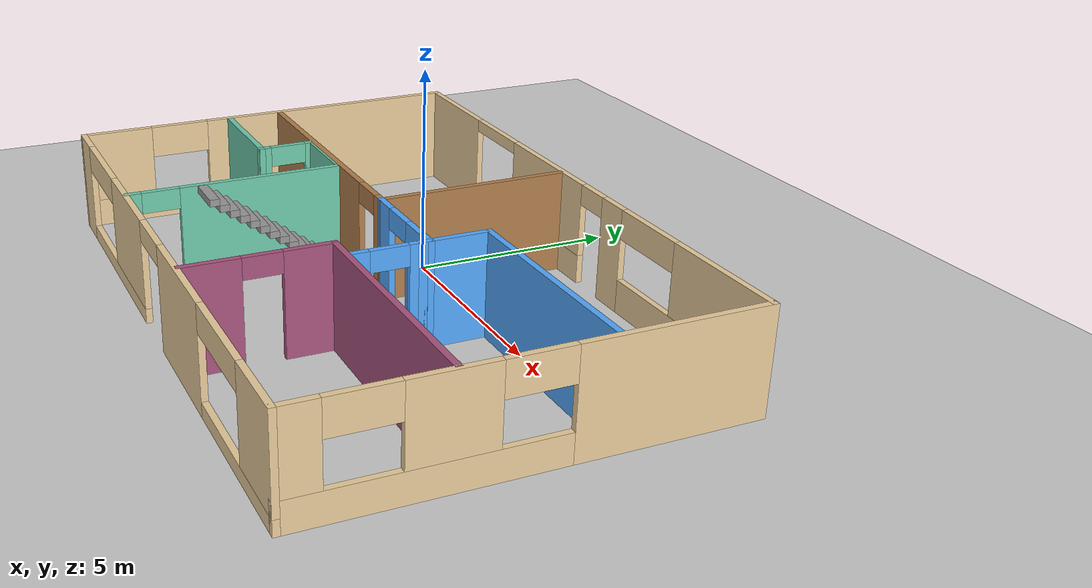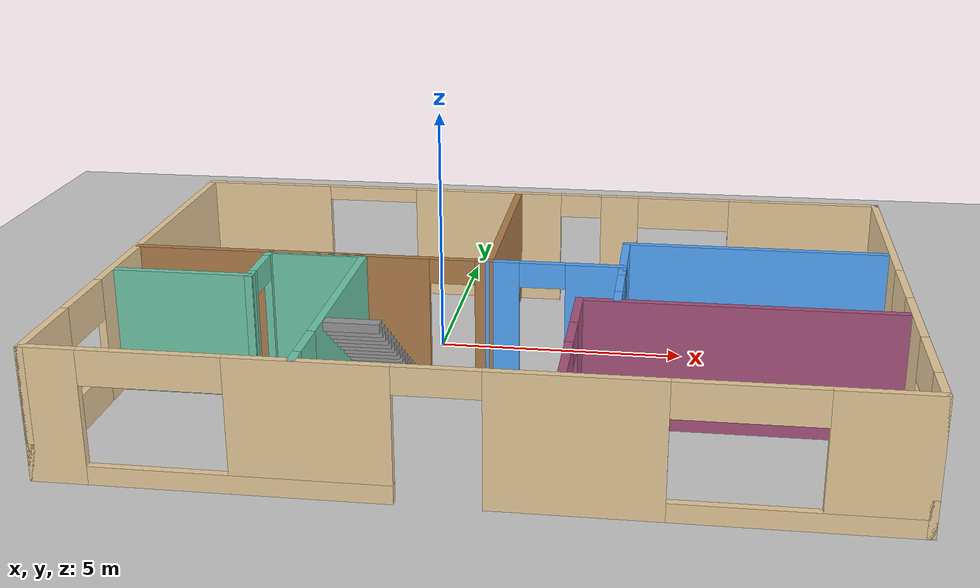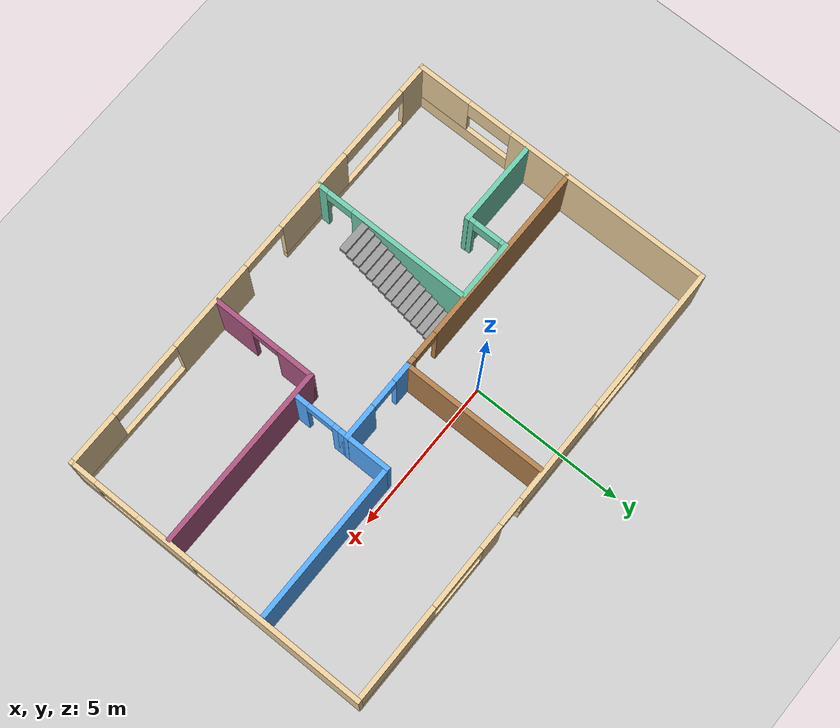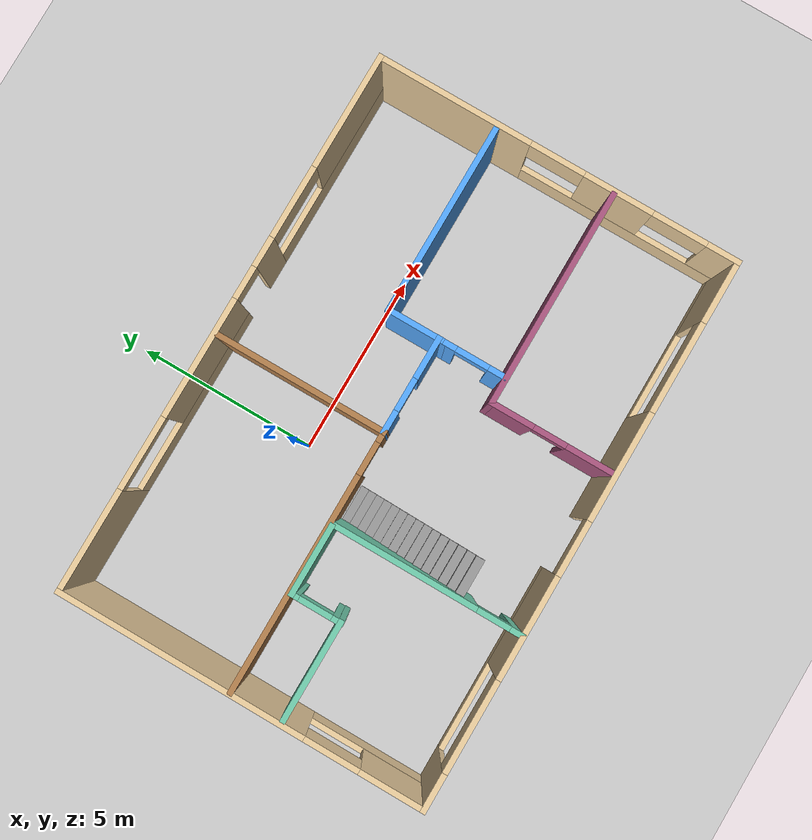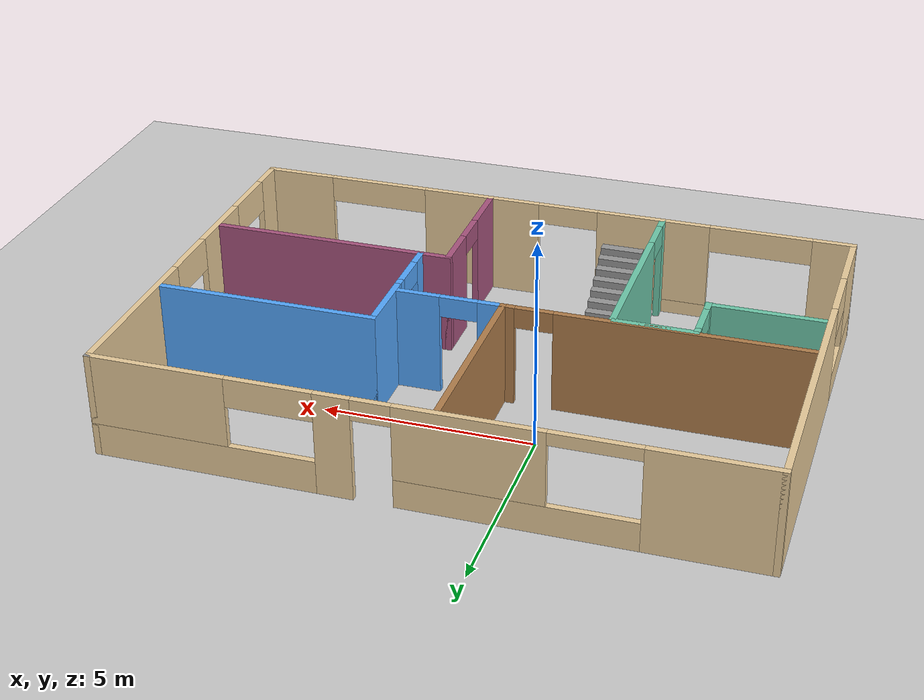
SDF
<sdf version="1.6">
 <world name="default">
  <model name="ground_plane">
   <static>1</static>
   <link name="link">
    <collision name="collision">
     <geometry><plane><normal>0 0 1</normal><size>100 100</size></plane></geometry>
     <surface>
      <contact><collide_bitmask>65535</collide_bitmask></contact>
      <friction><ode><mu>100</mu><mu2>50</mu2></ode></friction>
     </surface>
    </collision>
    <visual name="visual">
     <cast_shadows>0</cast_shadows>
     <geometry><plane><normal>0 0 1</normal><size>100 100</size></plane></geometry>
     <material>
      <script><uri>file://media/materials/scripts/gazebo.material</uri><name>Gazebo/Grey</name></script>
     </material>
    </visual>
   </link>
  </model>
  <model name="MyBuilding">
   <pose>1.58731 -1.90203 0 0 -0 0</pose>
   <link name="Stairs_0">
    <visual name="Stairs_0_Visual_0">
     <pose>-2.26321 0.057041 0.083333 0 -0 0</pose>
     <geometry><box><size>1 0.233333 0.166667</size></box></geometry>
     <material>
      <script><uri>file://media/materials/scripts/gazebo.material</uri><name>Gazebo/Grey</name></script>
      <ambient>1 1 1 1</ambient>
     </material>
     <meta><layer>0</layer></meta>
    </visual>
    <collision name="Stairs_0_Collision_0">
     <geometry><box><size>1 0.233333 0.166667</size></box></geometry>
     <pose>-2.26321 0.057041 0.083333 0 -0 0</pose>
    </collision>
    <visual name="Stairs_0_Visual_1">
     <pose>-2.26321 -0.176293 0.25 0 -0 0</pose>
     <geometry><box><size>1 0.233333 0.166667</size></box></geometry>
     <material>
      <script><uri>file://media/materials/scripts/gazebo.material</uri><name>Gazebo/Grey</name></script>
      <ambient>1 1 1 1</ambient>
     </material>
     <meta><layer>0</layer></meta>
    </visual>
    <collision name="Stairs_0_Collision_1">
     <geometry><box><size>1 0.233333 0.166667</size></box></geometry>
     <pose>-2.26321 -0.176293 0.25 0 -0 0</pose>
    </collision>
    <visual name="Stairs_0_Visual_2">
     <pose>-2.26321 -0.409626 0.416667 0 -0 0</pose>
     <geometry><box><size>1 0.233333 0.166667</size></box></geometry>
     <material>
      <script><uri>file://media/materials/scripts/gazebo.material</uri><name>Gazebo/Grey</name></script>
      <ambient>1 1 1 1</ambient>
     </material>
     <meta><layer>0</layer></meta>
    </visual>
    <collision name="Stairs_0_Collision_2">
     <geometry><box><size>1 0.233333 0.166667</size></box></geometry>
     <pose>-2.26321 -0.409626 0.416667 0 -0 0</pose>
    </collision>
    <visual name="Stairs_0_Visual_3">
     <pose>-2.26321 -0.642959 0.583333 0 -0 0</pose>
     <geometry><box><size>1 0.233333 0.166667</size></box></geometry>
     <material>
      <script><uri>file://media/materials/scripts/gazebo.material</uri><name>Gazebo/Grey</name></script>
      <ambient>1 1 1 1</ambient>
     </material>
     <meta><layer>0</layer></meta>
    </visual>
    <collision name="Stairs_0_Collision_3">
     <geometry><box><size>1 0.233333 0.166667</size></box></geometry>
     <pose>-2.26321 -0.642959 0.583333 0 -0 0</pose>
    </collision>
    <visual name="Stairs_0_Visual_4">
     <pose>-2.26321 -0.876293 0.75 0 -0 0</pose>
     <geometry><box><size>1 0.233333 0.166667</size></box></geometry>
     <material>
      <script><uri>file://media/materials/scripts/gazebo.material</uri><name>Gazebo/Grey</name></script>
      <ambient>1 1 1 1</ambient>
     </material>
     <meta><layer>0</layer></meta>
    </visual>
    <collision name="Stairs_0_Collision_4">
     <geometry><box><size>1 0.233333 0.166667</size></box></geometry>
     <pose>-2.26321 -0.876293 0.75 0 -0 0</pose>
    </collision>
    <visual name="Stairs_0_Visual_5">
     <pose>-2.26321 -1.10963 0.916667 0 -0 0</pose>
     <geometry><box><size>1 0.233333 0.166667</size></box></geometry>
     <material>
      <script><uri>file://media/materials/scripts/gazebo.material</uri><name>Gazebo/Grey</name></script>
      <ambient>1 1 1 1</ambient>
     </material>
     <meta><layer>0</layer></meta>
    </visual>
    <collision name="Stairs_0_Collision_5">
     <geometry><box><size>1 0.233333 0.166667</size></box></geometry>
     <pose>-2.26321 -1.10963 0.916667 0 -0 0</pose>
    </collision>
    <visual name="Stairs_0_Visual_6">
     <pose>-2.26321 -1.34296 1.08333 0 -0 0</pose>
     <geometry><box><size>1 0.233333 0.166667</size></box></geometry>
     <material>
      <script><uri>file://media/materials/scripts/gazebo.material</uri><name>Gazebo/Grey</name></script>
      <ambient>1 1 1 1</ambient>
     </material>
     <meta><layer>0</layer></meta>
    </visual>
    <collision name="Stairs_0_Collision_6">
     <geometry><box><size>1 0.233333 0.166667</size></box></geometry>
     <pose>-2.26321 -1.34296 1.08333 0 -0 0</pose>
    </collision>
    <visual name="Stairs_0_Visual_7">
     <pose>-2.26321 -1.57629 1.25 0 -0 0</pose>
     <geometry><box><size>1 0.233333 0.166667</size></box></geometry>
     <material>
      <script><uri>file://media/materials/scripts/gazebo.material</uri><name>Gazebo/Grey</name></script>
      <ambient>1 1 1 1</ambient>
     </material>
     <meta><layer>0</layer></meta>
    </visual>
    <collision name="Stairs_0_Collision_7">
     <geometry><box><size>1 0.233333 0.166667</size></box></geometry>
     <pose>-2.26321 -1.57629 1.25 0 -0 0</pose>
    </collision>
    <visual name="Stairs_0_Visual_8">
     <pose>-2.26321 -1.80963 1.41667 0 -0 0</pose>
     <geometry><box><size>1 0.233333 0.166667</size></box></geometry>
     <material>
      <script><uri>file://media/materials/scripts/gazebo.material</uri><name>Gazebo/Grey</name></script>
      <ambient>1 1 1 1</ambient>
     </material>
     <meta><layer>0</layer></meta>
    </visual>
    <collision name="Stairs_0_Collision_8">
     <geometry><box><size>1 0.233333 0.166667</size></box></geometry>
     <pose>-2.26321 -1.80963 1.41667 0 -0 0</pose>
    </collision>
    <visual name="Stairs_0_Visual_9">
     <pose>-2.26321 -2.04296 1.58333 0 -0 0</pose>
     <geometry><box><size>1 0.233333 0.166667</size></box></geometry>
     <material>
      <script><uri>file://media/materials/scripts/gazebo.material</uri><name>Gazebo/Grey</name></script>
      <ambient>1 1 1 1</ambient>
     </material>
     <meta><layer>0</layer></meta>
    </visual>
    <collision name="Stairs_0_Collision_9">
     <geometry><box><size>1 0.233333 0.166667</size></box></geometry>
     <pose>-2.26321 -2.04296 1.58333 0 -0 0</pose>
    </collision>
    <visual name="Stairs_0_Visual_10">
     <pose>-2.26321 -2.27629 1.75 0 -0 0</pose>
     <geometry><box><size>1 0.233333 0.166667</size></box></geometry>
     <material>
      <script><uri>file://media/materials/scripts/gazebo.material</uri><name>Gazebo/Grey</name></script>
      <ambient>1 1 1 1</ambient>
     </material>
     <meta><layer>0</layer></meta>
    </visual>
    <collision name="Stairs_0_Collision_10">
     <geometry><box><size>1 0.233333 0.166667</size></box></geometry>
     <pose>-2.26321 -2.27629 1.75 0 -0 0</pose>
    </collision>
    <visual name="Stairs_0_Visual_11">
     <pose>-2.26321 -2.50963 1.91667 0 -0 0</pose>
     <geometry><box><size>1 0.233333 0.166667</size></box></geometry>
     <material>
      <script><uri>file://media/materials/scripts/gazebo.material</uri><name>Gazebo/Grey</name></script>
      <ambient>1 1 1 1</ambient>
     </material>
     <meta><layer>0</layer></meta>
    </visual>
    <collision name="Stairs_0_Collision_11">
     <geometry><box><size>1 0.233333 0.166667</size></box></geometry>
     <pose>-2.26321 -2.50963 1.91667 0 -0 0</pose>
    </collision>
    <visual name="Stairs_0_Visual_12">
     <pose>-2.26321 -2.74296 2.08333 0 -0 0</pose>
     <geometry><box><size>1 0.233333 0.166667</size></box></geometry>
     <material>
      <script><uri>file://media/materials/scripts/gazebo.material</uri><name>Gazebo/Grey</name></script>
      <ambient>1 1 1 1</ambient>
     </material>
     <meta><layer>0</layer></meta>
    </visual>
    <collision name="Stairs_0_Collision_12">
     <geometry><box><size>1 0.233333 0.166667</size></box></geometry>
     <pose>-2.26321 -2.74296 2.08333 0 -0 0</pose>
    </collision>
    <visual name="Stairs_0_Visual_13">
     <pose>-2.26321 -2.97629 2.25 0 -0 0</pose>
     <geometry><box><size>1 0.233333 0.166667</size></box></geometry>
     <material>
      <script><uri>file://media/materials/scripts/gazebo.material</uri><name>Gazebo/Grey</name></script>
      <ambient>1 1 1 1</ambient>
     </material>
     <meta><layer>0</layer></meta>
    </visual>
    <collision name="Stairs_0_Collision_13">
     <geometry><box><size>1 0.233333 0.166667</size></box></geometry>
     <pose>-2.26321 -2.97629 2.25 0 -0 0</pose>
    </collision>
    <visual name="Stairs_0_Visual_14">
     <pose>-2.26321 -3.20963 2.41667 0 -0 0</pose>
     <geometry><box><size>1 0.233333 0.166667</size></box></geometry>
     <material>
      <script><uri>file://media/materials/scripts/gazebo.material</uri><name>Gazebo/Grey</name></script>
      <ambient>1 1 1 1</ambient>
     </material>
     <meta><layer>0</layer></meta>
    </visual>
    <collision name="Stairs_0_Collision_14">
     <geometry><box><size>1 0.233333 0.166667</size></box></geometry>
     <pose>-2.26321 -3.20963 2.41667 0 -0 0</pose>
    </collision>
   </link>
   <link name="Wall_24">
    <pose>-7.5 0 0 0 0 -1.5708</pose>
    <visual name="Wall_24_Visual_0">
     <pose>-1.66537 0 1.25 0 -0 0</pose>
     <geometry><box><size>6.81926 0.15 2.5</size></box></geometry>
     <material>
      <script><uri>file://media/materials/scripts/gazebo.material</uri><name>Gazebo/Grey</name></script>
      <ambient>0.921569 0.807843 0.615686 1</ambient>
     </material>
     <meta><layer>0</layer></meta>
    </visual>
    <collision name="Wall_24_Collision_0">
     <geometry><box><size>6.81926 0.15 2.5</size></box></geometry>
     <pose>-1.66537 0 1.25 0 -0 0</pose>
    </collision>
    <visual name="Wall_24_Visual_1">
     <pose>3.40963 0 0.35 0 -0 0</pose>
     <geometry><box><size>3.33074 0.15 0.7</size></box></geometry>
     <material>
      <script><uri>file://media/materials/scripts/gazebo.material</uri><name>Gazebo/Grey</name></script>
      <ambient>0.921569 0.807843 0.615686 1</ambient>
     </material>
     <meta><layer>0</layer></meta>
    </visual>
    <collision name="Wall_24_Collision_1">
     <geometry><box><size>3.33074 0.15 0.7</size></box></geometry>
     <pose>3.40963 0 0.35 0 -0 0</pose>
    </collision>
    <visual name="Wall_24_Visual_2">
     <pose>4.15963 0 1.6 0 -0 0</pose>
     <geometry><box><size>1.83074 0.15 1.8</size></box></geometry>
     <material>
      <script><uri>file://media/materials/scripts/gazebo.material</uri><name>Gazebo/Grey</name></script>
      <ambient>0.921569 0.807843 0.615686 1</ambient>
     </material>
     <meta><layer>0</layer></meta>
    </visual>
    <collision name="Wall_24_Collision_2">
     <geometry><box><size>1.83074 0.15 1.8</size></box></geometry>
     <pose>4.15963 0 1.6 0 -0 0</pose>
    </collision>
    <visual name="Wall_24_Visual_3">
     <pose>2.49426 0 2.1 0 -0 0</pose>
     <geometry><box><size>1.5 0.15 0.8</size></box></geometry>
     <material>
      <script><uri>file://media/materials/scripts/gazebo.material</uri><name>Gazebo/Grey</name></script>
      <ambient>0.921569 0.807843 0.615686 1</ambient>
     </material>
     <meta><layer>0</layer></meta>
    </visual>
    <collision name="Wall_24_Collision_3">
     <geometry><box><size>1.5 0.15 0.8</size></box></geometry>
     <pose>2.49426 0 2.1 0 -0 0</pose>
    </collision>
   </link>
   <link name="Wall_25">
    <pose>0 -5 0 0 -0 0</pose>
    <visual name="Wall_25_Visual_0">
     <pose>-7.05279 0 1.25 0 -0 0</pose>
     <geometry><box><size>1.04517 0.15 2.5</size></box></geometry>
     <material>
      <script><uri>file://media/materials/scripts/gazebo.material</uri><name>Gazebo/Grey</name></script>
      <ambient>0.921569 0.807843 0.615686 1</ambient>
     </material>
     <meta><layer>0</layer></meta>
    </visual>
    <collision name="Wall_25_Collision_0">
     <geometry><box><size>1.04517 0.15 2.5</size></box></geometry>
     <pose>-7.05279 0 1.25 0 -0 0</pose>
    </collision>
    <visual name="Wall_25_Visual_1">
     <pose>1.78979 0 1.25 0 -0 0</pose>
     <geometry><box><size>3 0.15 2.5</size></box></geometry>
     <material>
      <script><uri>file://media/materials/scripts/gazebo.material</uri><name>Gazebo/Grey</name></script>
      <ambient>0.921569 0.807843 0.615686 1</ambient>
     </material>
     <meta><layer>0</layer></meta>
    </visual>
    <collision name="Wall_25_Collision_1">
     <geometry><box><size>3 0.15 2.5</size></box></geometry>
     <pose>1.78979 0 1.25 0 -0 0</pose>
    </collision>
    <visual name="Wall_25_Visual_2">
     <pose>-3.87021 0 0.175 0 -0 0</pose>
     <geometry><box><size>5.32 0.15 0.35</size></box></geometry>
     <material>
      <script><uri>file://media/materials/scripts/gazebo.material</uri><name>Gazebo/Grey</name></script>
      <ambient>0.921569 0.807843 0.615686 1</ambient>
     </material>
     <meta><layer>0</layer></meta>
    </visual>
    <collision name="Wall_25_Collision_2">
     <geometry><box><size>5.32 0.15 0.35</size></box></geometry>
     <pose>-3.87021 0 0.175 0 -0 0</pose>
    </collision>
    <visual name="Wall_25_Visual_3">
     <pose>5.43258 0 0.175 0 -0 0</pose>
     <geometry><box><size>4.28558 0.15 0.35</size></box></geometry>
     <material>
      <script><uri>file://media/materials/scripts/gazebo.material</uri><name>Gazebo/Grey</name></script>
      <ambient>0.921569 0.807843 0.615686 1</ambient>
     </material>
     <meta><layer>0</layer></meta>
    </visual>
    <collision name="Wall_25_Collision_3">
     <geometry><box><size>4.28558 0.15 0.35</size></box></geometry>
     <pose>5.43258 0 0.175 0 -0 0</pose>
    </collision>
    <visual name="Wall_25_Visual_4">
     <pose>-2.62021 0 1.425 0 -0 0</pose>
     <geometry><box><size>2.82 0.15 2.15</size></box></geometry>
     <material>
      <script><uri>file://media/materials/scripts/gazebo.material</uri><name>Gazebo/Grey</name></script>
      <ambient>0.921569 0.807843 0.615686 1</ambient>
     </material>
     <meta><layer>0</layer></meta>
    </visual>
    <collision name="Wall_25_Collision_4">
     <geometry><box><size>2.82 0.15 2.15</size></box></geometry>
     <pose>-2.62021 0 1.425 0 -0 0</pose>
    </collision>
    <visual name="Wall_25_Visual_5">
     <pose>-2.62021 0 1.425 0 -0 0</pose>
     <geometry><box><size>2.82 0.15 2.15</size></box></geometry>
     <material>
      <script><uri>file://media/materials/scripts/gazebo.material</uri><name>Gazebo/Grey</name></script>
      <ambient>0.921569 0.807843 0.615686 1</ambient>
     </material>
     <meta><layer>0</layer></meta>
    </visual>
    <collision name="Wall_25_Collision_5">
     <geometry><box><size>2.82 0.15 2.15</size></box></geometry>
     <pose>-2.62021 0 1.425 0 -0 0</pose>
    </collision>
    <visual name="Wall_25_Visual_6">
     <pose>6.68258 0 1.425 0 -0 0</pose>
     <geometry><box><size>1.78558 0.15 2.15</size></box></geometry>
     <material>
      <script><uri>file://media/materials/scripts/gazebo.material</uri><name>Gazebo/Grey</name></script>
      <ambient>0.921569 0.807843 0.615686 1</ambient>
     </material>
     <meta><layer>0</layer></meta>
    </visual>
    <collision name="Wall_25_Collision_6">
     <geometry><box><size>1.78558 0.15 2.15</size></box></geometry>
     <pose>6.68258 0 1.425 0 -0 0</pose>
    </collision>
    <visual name="Wall_25_Visual_7">
     <pose>-5.28021 0 2.175 0 -0 0</pose>
     <geometry><box><size>2.5 0.15 0.65</size></box></geometry>
     <material>
      <script><uri>file://media/materials/scripts/gazebo.material</uri><name>Gazebo/Grey</name></script>
      <ambient>0.921569 0.807843 0.615686 1</ambient>
     </material>
     <meta><layer>0</layer></meta>
    </visual>
    <collision name="Wall_25_Collision_7">
     <geometry><box><size>2.5 0.15 0.65</size></box></geometry>
     <pose>-5.28021 0 2.175 0 -0 0</pose>
    </collision>
    <visual name="Wall_25_Visual_8">
     <pose>4.53979 0 2.175 0 -0 0</pose>
     <geometry><box><size>2.5 0.15 0.65</size></box></geometry>
     <material>
      <script><uri>file://media/materials/scripts/gazebo.material</uri><name>Gazebo/Grey</name></script>
      <ambient>0.921569 0.807843 0.615686 1</ambient>
     </material>
     <meta><layer>0</layer></meta>
    </visual>
    <collision name="Wall_25_Collision_8">
     <geometry><box><size>2.5 0.15 0.65</size></box></geometry>
     <pose>4.53979 0 2.175 0 -0 0</pose>
    </collision>
    <visual name="Wall_25_Visual_9">
     <pose>-0.460207 0 2.25 0 -0 0</pose>
     <geometry><box><size>1.5 0.15 0.5</size></box></geometry>
     <material>
      <script><uri>file://media/materials/scripts/gazebo.material</uri><name>Gazebo/Grey</name></script>
      <ambient>0.921569 0.807843 0.615686 1</ambient>
     </material>
     <meta><layer>0</layer></meta>
    </visual>
    <collision name="Wall_25_Collision_9">
     <geometry><box><size>1.5 0.15 0.5</size></box></geometry>
     <pose>-0.460207 0 2.25 0 -0 0</pose>
    </collision>
    <visual name="Wall_25_Visual_10">
     <pose>-0.460207 0 2.25 0 -0 0</pose>
     <geometry><box><size>1.5 0.15 0.5</size></box></geometry>
     <material>
      <script><uri>file://media/materials/scripts/gazebo.material</uri><name>Gazebo/Grey</name></script>
      <ambient>0.921569 0.807843 0.615686 1</ambient>
     </material>
     <meta><layer>0</layer></meta>
    </visual>
    <collision name="Wall_25_Collision_10">
     <geometry><box><size>1.5 0.15 0.5</size></box></geometry>
     <pose>-0.460207 0 2.25 0 -0 0</pose>
    </collision>
   </link>
   <link name="Wall_28">
    <pose>-2.855 -2.417 0 0 -0 1.5708</pose>
    <visual name="Wall_28_Visual_0">
     <pose>-2.42597 0 1.25 0 -0 0</pose>
     <geometry><box><size>0.39806 0.15 2.5</size></box></geometry>
     <material>
      <script><uri>file://media/materials/scripts/gazebo.material</uri><name>Gazebo/Grey</name></script>
      <ambient>0.435294 0.796078 0.67451 1</ambient>
     </material>
     <meta><layer>0</layer></meta>
    </visual>
    <collision name="Wall_28_Collision_0">
     <geometry><box><size>0.39806 0.15 2.5</size></box></geometry>
     <pose>-2.42597 0 1.25 0 -0 0</pose>
    </collision>
    <visual name="Wall_28_Visual_1">
     <pose>0.64903 0 1.25 0 -0 0</pose>
     <geometry><box><size>3.95194 0.15 2.5</size></box></geometry>
     <material>
      <script><uri>file://media/materials/scripts/gazebo.material</uri><name>Gazebo/Grey</name></script>
      <ambient>0.435294 0.796078 0.67451 1</ambient>
     </material>
     <meta><layer>0</layer></meta>
    </visual>
    <collision name="Wall_28_Collision_1">
     <geometry><box><size>3.95194 0.15 2.5</size></box></geometry>
     <pose>0.64903 0 1.25 0 -0 0</pose>
    </collision>
    <visual name="Wall_28_Visual_2">
     <pose>-1.77694 0 2.25 0 -0 0</pose>
     <geometry><box><size>0.9 0.15 0.5</size></box></geometry>
     <material>
      <script><uri>file://media/materials/scripts/gazebo.material</uri><name>Gazebo/Grey</name></script>
      <ambient>0.435294 0.796078 0.67451 1</ambient>
     </material>
     <meta><layer>0</layer></meta>
    </visual>
    <collision name="Wall_28_Collision_2">
     <geometry><box><size>0.9 0.15 0.5</size></box></geometry>
     <pose>-1.77694 0 2.25 0 -0 0</pose>
    </collision>
   </link>
   <link name="Wall_3">
    <pose>0 5 0 0 -0 0</pose>
    <visual name="Wall_3_Visual_0">
     <pose>-6.1376 0 1.25 0 -0 0</pose>
     <geometry><box><size>2.87479 0.15 2.5</size></box></geometry>
     <material>
      <script><uri>file://media/materials/scripts/gazebo.material</uri><name>Gazebo/Grey</name></script>
      <ambient>0.921569 0.807843 0.615686 1</ambient>
     </material>
     <meta><layer>0</layer></meta>
    </visual>
    <collision name="Wall_3_Collision_0">
     <geometry><box><size>2.87479 0.15 2.5</size></box></geometry>
     <pose>-6.1376 0 1.25 0 -0 0</pose>
    </collision>
    <visual name="Wall_3_Visual_1">
     <pose>1.92479 0 1.25 0 -0 0</pose>
     <geometry><box><size>0.83 0.15 2.5</size></box></geometry>
     <material>
      <script><uri>file://media/materials/scripts/gazebo.material</uri><name>Gazebo/Grey</name></script>
      <ambient>0.921569 0.807843 0.615686 1</ambient>
     </material>
     <meta><layer>0</layer></meta>
    </visual>
    <collision name="Wall_3_Collision_1">
     <geometry><box><size>0.83 0.15 2.5</size></box></geometry>
     <pose>1.92479 0 1.25 0 -0 0</pose>
    </collision>
    <visual name="Wall_3_Visual_2">
     <pose>-2.04521 0 0.35 0 -0 0</pose>
     <geometry><box><size>5.31 0.15 0.7</size></box></geometry>
     <material>
      <script><uri>file://media/materials/scripts/gazebo.material</uri><name>Gazebo/Grey</name></script>
      <ambient>0.921569 0.807843 0.615686 1</ambient>
     </material>
     <meta><layer>0</layer></meta>
    </visual>
    <collision name="Wall_3_Collision_2">
     <geometry><box><size>5.31 0.15 0.7</size></box></geometry>
     <pose>-2.04521 0 0.35 0 -0 0</pose>
    </collision>
    <visual name="Wall_3_Visual_3">
     <pose>4.9574 0 0.4 0 -0 0</pose>
     <geometry><box><size>5.23521 0.15 0.8</size></box></geometry>
     <material>
      <script><uri>file://media/materials/scripts/gazebo.material</uri><name>Gazebo/Grey</name></script>
      <ambient>0.921569 0.807843 0.615686 1</ambient>
     </material>
     <meta><layer>0</layer></meta>
    </visual>
    <collision name="Wall_3_Collision_3">
     <geometry><box><size>5.23521 0.15 0.8</size></box></geometry>
     <pose>4.9574 0 0.4 0 -0 0</pose>
    </collision>
    <visual name="Wall_3_Visual_4">
     <pose>-1.04521 0 1.6 0 -0 0</pose>
     <geometry><box><size>3.31 0.15 1.8</size></box></geometry>
     <material>
      <script><uri>file://media/materials/scripts/gazebo.material</uri><name>Gazebo/Grey</name></script>
      <ambient>0.921569 0.807843 0.615686 1</ambient>
     </material>
     <meta><layer>0</layer></meta>
    </visual>
    <collision name="Wall_3_Collision_4">
     <geometry><box><size>3.31 0.15 1.8</size></box></geometry>
     <pose>-1.04521 0 1.6 0 -0 0</pose>
    </collision>
    <visual name="Wall_3_Visual_5">
     <pose>5.9574 0 1.65 0 -0 0</pose>
     <geometry><box><size>3.23521 0.15 1.7</size></box></geometry>
     <material>
      <script><uri>file://media/materials/scripts/gazebo.material</uri><name>Gazebo/Grey</name></script>
      <ambient>0.921569 0.807843 0.615686 1</ambient>
     </material>
     <meta><layer>0</layer></meta>
    </visual>
    <collision name="Wall_3_Collision_5">
     <geometry><box><size>3.23521 0.15 1.7</size></box></geometry>
     <pose>5.9574 0 1.65 0 -0 0</pose>
    </collision>
    <visual name="Wall_3_Visual_6">
     <pose>3.33979 0 2.15 0 -0 0</pose>
     <geometry><box><size>2 0.15 0.7</size></box></geometry>
     <material>
      <script><uri>file://media/materials/scripts/gazebo.material</uri><name>Gazebo/Grey</name></script>
      <ambient>0.921569 0.807843 0.615686 1</ambient>
     </material>
     <meta><layer>0</layer></meta>
    </visual>
    <collision name="Wall_3_Collision_6">
     <geometry><box><size>2 0.15 0.7</size></box></geometry>
     <pose>3.33979 0 2.15 0 -0 0</pose>
    </collision>
    <visual name="Wall_3_Visual_7">
     <pose>1.05979 0 2.25 0 -0 0</pose>
     <geometry><box><size>0.9 0.15 0.5</size></box></geometry>
     <material>
      <script><uri>file://media/materials/scripts/gazebo.material</uri><name>Gazebo/Grey</name></script>
      <ambient>0.921569 0.807843 0.615686 1</ambient>
     </material>
     <meta><layer>0</layer></meta>
    </visual>
    <collision name="Wall_3_Collision_7">
     <geometry><box><size>0.9 0.15 0.5</size></box></geometry>
     <pose>1.05979 0 2.25 0 -0 0</pose>
    </collision>
    <visual name="Wall_3_Visual_8">
     <pose>-3.70021 0 2.35 0 -0 0</pose>
     <geometry><box><size>2 0.15 0.3</size></box></geometry>
     <material>
      <script><uri>file://media/materials/scripts/gazebo.material</uri><name>Gazebo/Grey</name></script>
      <ambient>0.921569 0.807843 0.615686 1</ambient>
     </material>
     <meta><layer>0</layer></meta>
    </visual>
    <collision name="Wall_3_Collision_8">
     <geometry><box><size>2 0.15 0.3</size></box></geometry>
     <pose>-3.70021 0 2.35 0 -0 0</pose>
    </collision>
   </link>
   <link name="Wall_33">
    <collision name="Wall_33_Collision">
     <geometry><box><size>6 0.15 2.5</size></box></geometry>
     <pose>0 0 1.25 0 -0 0</pose>
    </collision>
    <visual name="Wall_33_Visual">
     <pose>0 0 1.25 0 -0 0</pose>
     <geometry><box><size>6 0.15 2.5</size></box></geometry>
     <material>
      <script><uri>file://media/materials/scripts/gazebo.material</uri><name>Gazebo/Grey</name></script>
      <ambient>0.666667 0.333333 0.498039 1</ambient>
     </material>
     <meta><layer>0</layer></meta>
    </visual>
    <pose>4.48282 -1.58892 0 0 -0 0</pose>
   </link>
   <link name="Wall_36">
    <pose>2.24489 -0.724368 0 0 0 -1.5708</pose>
    <visual name="Wall_36_Visual_0">
     <pose>-0.697553 0 1.25 0 -0 0</pose>
     <geometry><box><size>0.354895 0.15 2.5</size></box></geometry>
     <material>
      <script><uri>file://media/materials/scripts/gazebo.material</uri><name>Gazebo/Grey</name></script>
      <ambient>0.333333 0.666667 1 1</ambient>
     </material>
     <meta><layer>0</layer></meta>
    </visual>
    <collision name="Wall_36_Collision_0">
     <geometry><box><size>0.354895 0.15 2.5</size></box></geometry>
     <pose>-0.697553 0 1.25 0 -0 0</pose>
    </collision>
    <visual name="Wall_36_Visual_1">
     <pose>0.627447 0 1.25 0 -0 0</pose>
     <geometry><box><size>0.495105 0.15 2.5</size></box></geometry>
     <material>
      <script><uri>file://media/materials/scripts/gazebo.material</uri><name>Gazebo/Grey</name></script>
      <ambient>0.333333 0.666667 1 1</ambient>
     </material>
     <meta><layer>0</layer></meta>
    </visual>
    <collision name="Wall_36_Collision_1">
     <geometry><box><size>0.495105 0.15 2.5</size></box></geometry>
     <pose>0.627447 0 1.25 0 -0 0</pose>
    </collision>
    <visual name="Wall_36_Visual_2">
     <pose>-0.070105 0 2.25 0 -0 0</pose>
     <geometry><box><size>0.9 0.15 0.5</size></box></geometry>
     <material>
      <script><uri>file://media/materials/scripts/gazebo.material</uri><name>Gazebo/Grey</name></script>
      <ambient>0.333333 0.666667 1 1</ambient>
     </material>
     <meta><layer>0</layer></meta>
    </visual>
    <collision name="Wall_36_Collision_2">
     <geometry><box><size>0.9 0.15 0.5</size></box></geometry>
     <pose>-0.070105 0 2.25 0 -0 0</pose>
    </collision>
   </link>
   <link name="Wall_38">
    <collision name="Wall_38_Collision">
     <geometry><box><size>1.75 0.15 2.5</size></box></geometry>
     <pose>0 0 1.25 0 -0 0</pose>
    </collision>
    <visual name="Wall_38_Visual">
     <pose>0 0 1.25 0 -0 0</pose>
     <geometry><box><size>1.75 0.15 2.5</size></box></geometry>
     <material>
      <script><uri>file://media/materials/scripts/gazebo.material</uri><name>Gazebo/Grey</name></script>
      <ambient>0.333333 0.666667 1 1</ambient>
     </material>
     <meta><layer>0</layer></meta>
    </visual>
    <pose>2.24489 0.875632 0 0 -0 1.5708</pose>
   </link>
   <link name="Wall_39">
    <collision name="Wall_39_Collision">
     <geometry><box><size>5.25 0.15 2.5</size></box></geometry>
     <pose>0 0 1.25 0 -0 0</pose>
    </collision>
    <visual name="Wall_39_Visual">
     <pose>0 0 1.25 0 -0 0</pose>
     <geometry><box><size>5.25 0.15 2.5</size></box></geometry>
     <material>
      <script><uri>file://media/materials/scripts/gazebo.material</uri><name>Gazebo/Grey</name></script>
      <ambient>0.333333 0.666667 1 1</ambient>
     </material>
     <meta><layer>0</layer></meta>
    </visual>
    <pose>4.79489 1.67563 0 0 -0 0</pose>
   </link>
   <link name="Wall_43">
    <pose>1.55782 -3.26392 0 0 0 -1.5708</pose>
    <visual name="Wall_43_Visual_0">
     <pose>-1.13483 0 1.25 0 -0 0</pose>
     <geometry><box><size>1.23034 0.15 2.5</size></box></geometry>
     <material>
      <script><uri>file://media/materials/scripts/gazebo.material</uri><name>Gazebo/Grey</name></script>
      <ambient>0.666667 0.333333 0.498039 1</ambient>
     </material>
     <meta><layer>0</layer></meta>
    </visual>
    <collision name="Wall_43_Collision_0">
     <geometry><box><size>1.23034 0.15 2.5</size></box></geometry>
     <pose>-1.13483 0 1.25 0 -0 0</pose>
    </collision>
    <visual name="Wall_43_Visual_1">
     <pose>1.06517 0 1.25 0 -0 0</pose>
     <geometry><box><size>1.36966 0.15 2.5</size></box></geometry>
     <material>
      <script><uri>file://media/materials/scripts/gazebo.material</uri><name>Gazebo/Grey</name></script>
      <ambient>0.666667 0.333333 0.498039 1</ambient>
     </material>
     <meta><layer>0</layer></meta>
    </visual>
    <collision name="Wall_43_Collision_1">
     <geometry><box><size>1.36966 0.15 2.5</size></box></geometry>
     <pose>1.06517 0 1.25 0 -0 0</pose>
    </collision>
    <visual name="Wall_43_Visual_2">
     <pose>-0.069658 0 2.25 0 -0 0</pose>
     <geometry><box><size>0.9 0.15 0.5</size></box></geometry>
     <material>
      <script><uri>file://media/materials/scripts/gazebo.material</uri><name>Gazebo/Grey</name></script>
      <ambient>0.666667 0.333333 0.498039 1</ambient>
     </material>
     <meta><layer>0</layer></meta>
    </visual>
    <collision name="Wall_43_Collision_2">
     <geometry><box><size>0.9 0.15 0.5</size></box></geometry>
     <pose>-0.069658 0 2.25 0 -0 0</pose>
    </collision>
   </link>
   <link name="Wall_47">
    <collision name="Wall_47_Collision">
     <geometry><box><size>2.78025 0.15 2.5</size></box></geometry>
     <pose>0 0 1.25 0 -0 0</pose>
    </collision>
    <visual name="Wall_47_Visual">
     <pose>0 0 1.25 0 -0 0</pose>
     <geometry><box><size>2.78025 0.15 2.5</size></box></geometry>
     <material>
      <script><uri>file://media/materials/scripts/gazebo.material</uri><name>Gazebo/Grey</name></script>
      <ambient>0.435294 0.796078 0.67451 1</ambient>
     </material>
     <meta><layer>0</layer></meta>
    </visual>
    <pose>-6.0579 -1.1166 0 0 -0 0</pose>
   </link>
   <link name="Wall_48">
    <pose>-4.75795 -0.45686 0 0 -0 1.57087</pose>
    <visual name="Wall_48_Visual_0">
     <pose>-0.585551 0 1.25 0 -0 0</pose>
     <geometry><box><size>0.328897 0.15 2.5</size></box></geometry>
     <material>
      <script><uri>file://media/materials/scripts/gazebo.material</uri><name>Gazebo/Grey</name></script>
      <ambient>0.435294 0.796078 0.67451 1</ambient>
     </material>
     <meta><layer>0</layer></meta>
    </visual>
    <collision name="Wall_48_Collision_0">
     <geometry><box><size>0.328897 0.15 2.5</size></box></geometry>
     <pose>-0.585551 0 1.25 0 -0 0</pose>
    </collision>
    <visual name="Wall_48_Visual_1">
     <pose>0.614449 0 1.25 0 -0 0</pose>
     <geometry><box><size>0.271103 0.15 2.5</size></box></geometry>
     <material>
      <script><uri>file://media/materials/scripts/gazebo.material</uri><name>Gazebo/Grey</name></script>
      <ambient>0.435294 0.796078 0.67451 1</ambient>
     </material>
     <meta><layer>0</layer></meta>
    </visual>
    <collision name="Wall_48_Collision_1">
     <geometry><box><size>0.271103 0.15 2.5</size></box></geometry>
     <pose>0.614449 0 1.25 0 -0 0</pose>
    </collision>
    <visual name="Wall_48_Visual_2">
     <pose>0.028897 0 2.25 0 -0 0</pose>
     <geometry><box><size>0.9 0.15 0.5</size></box></geometry>
     <material>
      <script><uri>file://media/materials/scripts/gazebo.material</uri><name>Gazebo/Grey</name></script>
      <ambient>0.435294 0.796078 0.67451 1</ambient>
     </material>
     <meta><layer>0</layer></meta>
    </visual>
    <collision name="Wall_48_Collision_2">
     <geometry><box><size>0.9 0.15 0.5</size></box></geometry>
     <pose>0.028897 0 2.25 0 -0 0</pose>
    </collision>
   </link>
   <link name="Wall_5">
    <collision name="Wall_5_Collision">
     <geometry><box><size>0.15 0.15 2.5</size></box></geometry>
     <pose>0 0 1.25 0 -0 0</pose>
    </collision>
    <visual name="Wall_5_Visual">
     <pose>0 0 1.25 0 -0 0</pose>
     <geometry><box><size>0.15 0.15 2.5</size></box></geometry>
     <material>
      <script><uri>file://media/materials/scripts/gazebo.material</uri><name>Gazebo/Grey</name></script>
      <ambient>1 1 1 1</ambient>
     </material>
     <meta><layer>0</layer></meta>
    </visual>
    <pose>7.5 5 0 0 -0 0</pose>
   </link>
   <link name="Wall_55">
    <pose>-3.901 0.285 0 0 -0 0</pose>
    <visual name="Wall_55_Visual_0">
     <pose>-0.629891 0 1.25 0 -0 0</pose>
     <geometry><box><size>5.99022 0.15 2.5</size></box></geometry>
     <material>
      <script><uri>file://media/materials/scripts/gazebo.material</uri><name>Gazebo/Wood</name></script>
      <ambient>1 1 1 1</ambient>
     </material>
     <meta><layer>0</layer></meta>
    </visual>
    <collision name="Wall_55_Collision_0">
     <geometry><box><size>5.99022 0.15 2.5</size></box></geometry>
     <pose>-0.629891 0 1.25 0 -0 0</pose>
    </collision>
    <visual name="Wall_55_Visual_1">
     <pose>3.44511 0 1.25 0 -0 0</pose>
     <geometry><box><size>0.359783 0.15 2.5</size></box></geometry>
     <material>
      <script><uri>file://media/materials/scripts/gazebo.material</uri><name>Gazebo/Wood</name></script>
      <ambient>1 1 1 1</ambient>
     </material>
     <meta><layer>0</layer></meta>
    </visual>
    <collision name="Wall_55_Collision_1">
     <geometry><box><size>0.359783 0.15 2.5</size></box></geometry>
     <pose>3.44511 0 1.25 0 -0 0</pose>
    </collision>
    <visual name="Wall_55_Visual_2">
     <pose>2.81522 0 2.25 0 -0 0</pose>
     <geometry><box><size>0.9 0.15 0.5</size></box></geometry>
     <material>
      <script><uri>file://media/materials/scripts/gazebo.material</uri><name>Gazebo/Wood</name></script>
      <ambient>1 1 1 1</ambient>
     </material>
     <meta><layer>0</layer></meta>
    </visual>
    <collision name="Wall_55_Collision_2">
     <geometry><box><size>0.9 0.15 0.5</size></box></geometry>
     <pose>2.81522 0 2.25 0 -0 0</pose>
    </collision>
   </link>
   <link name="Wall_56">
    <collision name="Wall_56_Collision">
     <geometry><box><size>4.75 0.15 2.5</size></box></geometry>
     <pose>0 0 1.25 0 -0 0</pose>
    </collision>
    <visual name="Wall_56_Visual">
     <pose>0 0 1.25 0 -0 0</pose>
     <geometry><box><size>4.75 0.15 2.5</size></box></geometry>
     <material>
      <script><uri>file://media/materials/scripts/gazebo.material</uri><name>Gazebo/Wood</name></script>
      <ambient>1 1 1 1</ambient>
     </material>
     <meta><layer>0</layer></meta>
    </visual>
    <pose>-0.351 2.585 0 0 -0 1.5708</pose>
   </link>
   <link name="Wall_58">
    <pose>0.949092 0.285065 0 0 -0 5e-05</pose>
    <visual name="Wall_58_Visual_0">
     <pose>-1.04294 0 1.25 0 -0 0</pose>
     <geometry><box><size>0.664112 0.15 2.5</size></box></geometry>
     <material>
      <script><uri>file://media/materials/scripts/gazebo.material</uri><name>Gazebo/Grey</name></script>
      <ambient>0.333333 0.666667 1 1</ambient>
     </material>
     <meta><layer>0</layer></meta>
    </visual>
    <collision name="Wall_58_Collision_0">
     <geometry><box><size>0.664112 0.15 2.5</size></box></geometry>
     <pose>-1.04294 0 1.25 0 -0 0</pose>
    </collision>
    <visual name="Wall_58_Visual_1">
     <pose>0.782056 0 1.25 0 -0 0</pose>
     <geometry><box><size>1.18589 0.15 2.5</size></box></geometry>
     <material>
      <script><uri>file://media/materials/scripts/gazebo.material</uri><name>Gazebo/Grey</name></script>
      <ambient>0.333333 0.666667 1 1</ambient>
     </material>
     <meta><layer>0</layer></meta>
    </visual>
    <collision name="Wall_58_Collision_1">
     <geometry><box><size>1.18589 0.15 2.5</size></box></geometry>
     <pose>0.782056 0 1.25 0 -0 0</pose>
    </collision>
    <visual name="Wall_58_Visual_2">
     <pose>-0.260888 0 2.25 0 -0 0</pose>
     <geometry><box><size>0.9 0.15 0.5</size></box></geometry>
     <material>
      <script><uri>file://media/materials/scripts/gazebo.material</uri><name>Gazebo/Grey</name></script>
      <ambient>0.333333 0.666667 1 1</ambient>
     </material>
     <meta><layer>0</layer></meta>
    </visual>
    <collision name="Wall_58_Collision_2">
     <geometry><box><size>0.9 0.15 0.5</size></box></geometry>
     <pose>-0.260888 0 2.25 0 -0 0</pose>
    </collision>
   </link>
   <link name="Wall_6">
    <pose>7.5 0 0 0 0 -1.5708</pose>
    <visual name="Wall_6_Visual_0">
     <pose>-2.91696 0 1.25 0 -0 0</pose>
     <geometry><box><size>4.31609 0.15 2.5</size></box></geometry>
     <material>
      <script><uri>file://media/materials/scripts/gazebo.material</uri><name>Gazebo/Grey</name></script>
      <ambient>0.921569 0.807843 0.615686 1</ambient>
     </material>
     <meta><layer>0</layer></meta>
    </visual>
    <collision name="Wall_6_Collision_0">
     <geometry><box><size>4.31609 0.15 2.5</size></box></geometry>
     <pose>-2.91696 0 1.25 0 -0 0</pose>
    </collision>
    <visual name="Wall_6_Visual_1">
     <pose>2.15804 0 0.35 0 -0 0</pose>
     <geometry><box><size>5.83392 0.15 0.7</size></box></geometry>
     <material>
      <script><uri>file://media/materials/scripts/gazebo.material</uri><name>Gazebo/Grey</name></script>
      <ambient>0.921569 0.807843 0.615686 1</ambient>
     </material>
     <meta><layer>0</layer></meta>
    </visual>
    <collision name="Wall_6_Collision_1">
     <geometry><box><size>5.83392 0.15 0.7</size></box></geometry>
     <pose>2.15804 0 0.35 0 -0 0</pose>
    </collision>
    <visual name="Wall_6_Visual_2">
     <pose>1.69267 0 1.6 0 -0 0</pose>
     <geometry><box><size>1.90318 0.15 1.8</size></box></geometry>
     <material>
      <script><uri>file://media/materials/scripts/gazebo.material</uri><name>Gazebo/Grey</name></script>
      <ambient>0.921569 0.807843 0.615686 1</ambient>
     </material>
     <meta><layer>0</layer></meta>
    </visual>
    <collision name="Wall_6_Collision_2">
     <geometry><box><size>1.90318 0.15 1.8</size></box></geometry>
     <pose>1.69267 0 1.6 0 -0 0</pose>
    </collision>
    <visual name="Wall_6_Visual_3">
     <pose>4.60963 0 1.6 0 -0 0</pose>
     <geometry><box><size>0.930737 0.15 1.8</size></box></geometry>
     <material>
      <script><uri>file://media/materials/scripts/gazebo.material</uri><name>Gazebo/Grey</name></script>
      <ambient>0.921569 0.807843 0.615686 1</ambient>
     </material>
     <meta><layer>0</layer></meta>
    </visual>
    <collision name="Wall_6_Collision_3">
     <geometry><box><size>0.930737 0.15 1.8</size></box></geometry>
     <pose>4.60963 0 1.6 0 -0 0</pose>
    </collision>
    <visual name="Wall_6_Visual_4">
     <pose>-0.008915 0 2.1 0 -0 0</pose>
     <geometry><box><size>1.5 0.15 0.8</size></box></geometry>
     <material>
      <script><uri>file://media/materials/scripts/gazebo.material</uri><name>Gazebo/Grey</name></script>
      <ambient>0.921569 0.807843 0.615686 1</ambient>
     </material>
     <meta><layer>0</layer></meta>
    </visual>
    <collision name="Wall_6_Collision_4">
     <geometry><box><size>1.5 0.15 0.8</size></box></geometry>
     <pose>-0.008915 0 2.1 0 -0 0</pose>
    </collision>
    <visual name="Wall_6_Visual_5">
     <pose>3.39426 0 2.1 0 -0 0</pose>
     <geometry><box><size>1.5 0.15 0.8</size></box></geometry>
     <material>
      <script><uri>file://media/materials/scripts/gazebo.material</uri><name>Gazebo/Grey</name></script>
      <ambient>0.921569 0.807843 0.615686 1</ambient>
     </material>
     <meta><layer>0</layer></meta>
    </visual>
    <collision name="Wall_6_Collision_5">
     <geometry><box><size>1.5 0.15 0.8</size></box></geometry>
     <pose>3.39426 0 2.1 0 -0 0</pose>
    </collision>
   </link>
   <link name="Wall_60">
    <collision name="Wall_60_Collision">
     <geometry><box><size>2 0.15 2.5</size></box></geometry>
     <pose>0 0 1.25 0 -0 0</pose>
    </collision>
    <visual name="Wall_60_Visual">
     <pose>0 0 1.25 0 -0 0</pose>
     <geometry><box><size>2 0.15 2.5</size></box></geometry>
     <material>
      <script><uri>file://media/materials/scripts/gazebo.material</uri><name>Gazebo/Grey</name></script>
      <ambient>0.435294 0.796078 0.67451 1</ambient>
     </material>
     <meta><layer>0</layer></meta>
    </visual>
    <pose>-3.833 0.218 0 0 -0 0</pose>
   </link>
   <static>1</static>
  </model>
 </world>
</sdf>
